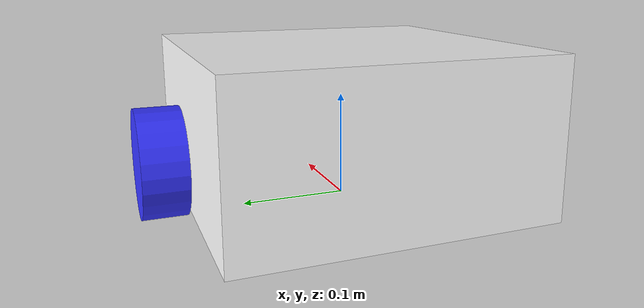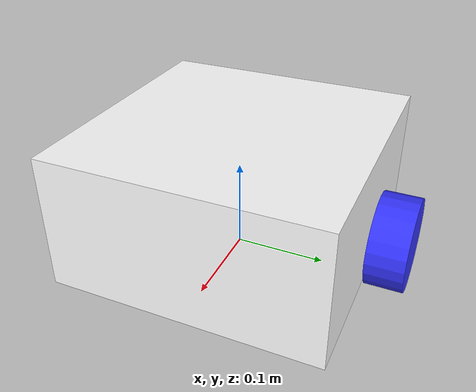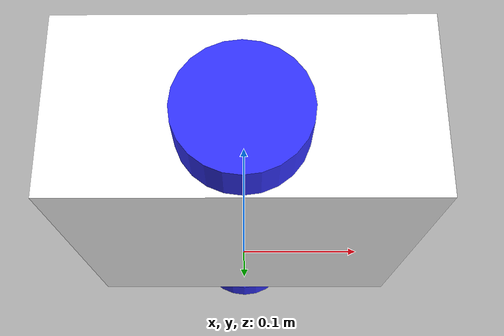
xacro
<?xml version="1.0"?>
<robot xmlns:xacro="http://www.ros.org/wiki/xacro">

  <!-- Materials -->
  <material name="white"><color rgba="1 1 1 1"/></material>
  <material name="blue"><color rgba="0.2 0.2 1 1"/></material>
  <material name="black"><color rgba="0 0 0 1"/></material>

  <!-- Base -->
  <link name="base_link"/>

  <!-- BASE_FOOTPRINT LINK -->

    <joint name="base_footprint_joint" type="fixed">
        <parent link="base_link"/>
        <child link="base_footprint"/>
        <origin xyz="0 0 0.3" rpy="0 0 0"/>
    </joint>

    <link name="base_footprint">
    </link>

  <!-- Chassis -->
  <joint name="chassis_joint" type="fixed">
    <parent link="base_link"/>
    <child link="chassis"/>
    <origin xyz="0 0 0.075"/>
  </joint>

  <link name="chassis">
    <visual>
      <geometry><box size="0.3 0.3 0.15"/></geometry>
      <material name="white"/>
    </visual>
    <collision>
      <geometry><box size="0.3 0.3 0.15"/></geometry>
    </collision>
    <inertial>
      <mass value="1.0"/>
      <inertia ixx="0.02" ixy="0" ixz="0"
               iyy="0.02" iyz="0"
               izz="0.02"/>
    </inertial>
  </link>

  <!-- Left wheel -->
  <joint name="left_wheel_joint" type="continuous">
    <parent link="base_link"/>
    <child link="left_wheel"/>
    <origin xyz="0 0.175 0.05" rpy="1.5708 0 0"/>
    <axis xyz="0 0 1"/>
  </joint>

  <link name="left_wheel">
    <visual>
      <geometry><cylinder radius="0.05" length="0.04"/></geometry>
      <material name="blue"/>
    </visual>
    <collision>
      <geometry><cylinder radius="0.05" length="0.04"/></geometry>
    </collision>
    <inertial>
      <mass value="0.1"/>
      <inertia ixx="0.0002" ixy="0" ixz="0"
               iyy="0.0002" iyz="0"
               izz="0.0002"/>
    </inertial>
  </link>

  <!-- Right wheel -->
  <joint name="right_wheel_joint" type="continuous">
    <parent link="base_link"/>
    <child link="right_wheel"/>
    <origin xyz="0 -0.175 0.05" rpy="-1.5708 0 0"/>
    <axis xyz="0 0 1"/>
  </joint>

  <link name="right_wheel">
    <visual>
      <geometry><cylinder radius="0.05" length="0.04"/></geometry>
      <material name="blue"/>
    </visual>
    <collision>
      <geometry><cylinder radius="0.05" length="0.04"/></geometry>
    </collision>
    <inertial>
      <mass value="0.1"/>
      <inertia ixx="0.0002" ixy="0" ixz="0"
               iyy="0.0002" iyz="0"
               izz="0.0002"/>
    </inertial>
  </link>

  <!-- Gazebo Classic Diff Drive Plugin -->
  <gazebo>
    <plugin name="diff_drive" filename="libgazebo_ros_diff_drive.so">
        <update_rate>50</update_rate>
        <left_joint>left_wheel_joint</left_joint>
        <right_joint>right_wheel_joint</right_joint>
        <wheel_separation>0.35</wheel_separation>
        <wheel_diameter>0.10</wheel_diameter>
        <max_wheel_torque>20</max_wheel_torque>
        <command_topic>cmd_vel</command_topic>
        <publish_odom>true</publish_odom>
        <publish_odom_tf>true</publish_odom_tf>
        <publish_wheel_tf>true</publish_wheel_tf>
        <odometry_topic>odom</odometry_topic>
        <odometry_frame>odom</odometry_frame>
        <robot_base_frame>base_link</robot_base_frame>
    </plugin>
  </gazebo>

  <!-- Gazebo properties for chassis -->
  <gazebo reference="chassis">
      <material>Gazebo/White</material>
      <mu1>0.2</mu1>
      <mu2>0.2</mu2>
  </gazebo>

  <!-- Gazebo properties for left wheel -->
  <gazebo reference="left_wheel">
      <material>Gazebo/Blue</material>
      <mu1>100.0</mu1>
      <mu2>100.0</mu2>
      <kp>10000000.0</kp>
      <kd>1.0</kd>
      <fdir1>1 0 0</fdir1>
  </gazebo>

  <!-- Gazebo properties for right wheel -->
  <gazebo reference="right_wheel">
      <material>Gazebo/Blue</material>
      <mu1>100.0</mu1>
      <mu2>100.0</mu2>
      <kp>10000000.0</kp>
      <kd>1.0</kd>
      <fdir1>1 0 0</fdir1>
  </gazebo>

</robot>
